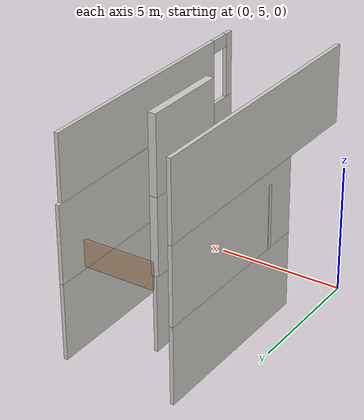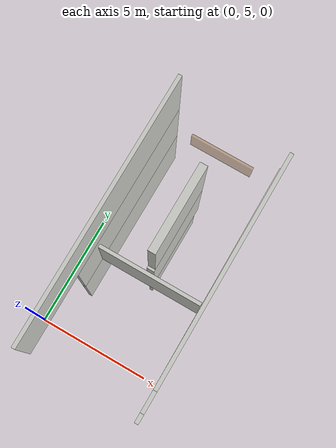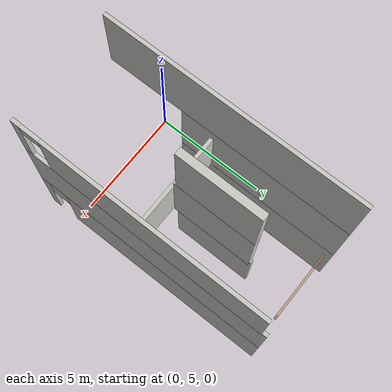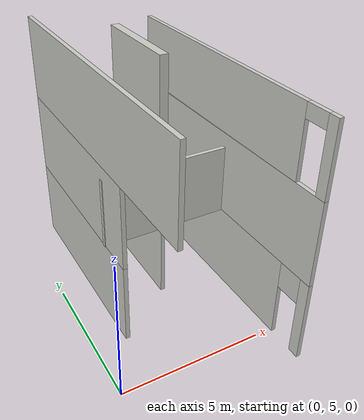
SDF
<sdf version="1.6">
 <model name="add_competition_building">
  <link name="Wall_253">
   <pose>1.156 10.5635 0 0 0 -1.5708</pose>
   <visual name="Wall_253_Visual">
    <pose>0 0 1.5 0 -0 0</pose>
    <geometry><box><size>7.25 0.15 3</size></box></geometry>
    <material>
     <script><uri>file://media/materials/scripts/gazebo.material</uri><name>Gazebo/CeilingTiled</name></script>
     <ambient>1 1 1 1</ambient>
     <shader type="pixel"/>
    </material>
    <meta><layer>0</layer></meta>
   </visual>
   <collision name="Wall_253_Collision">
    <pose>0 0 1.5 0 -0 0</pose>
    <geometry><box><size>7.25 0.15 3</size></box></geometry>
    <surface>
     <friction>
      <ode><mu>1</mu><mu2>1</mu2><fdir1>0 0 0</fdir1><slip1>0</slip1><slip2>0</slip2></ode>
      <torsional>
       <coefficient>1</coefficient>
       <patch_radius>0</patch_radius>
       <surface_radius>0</surface_radius>
       <use_patch_radius>1</use_patch_radius>
       <ode><slip>0</slip></ode>
      </torsional>
     </friction>
     <bounce><restitution_coefficient>0</restitution_coefficient><threshold>1e+06</threshold></bounce>
     <contact>
      <collide_without_contact>0</collide_without_contact>
      <collide_without_contact_bitmask>1</collide_without_contact_bitmask>
      <collide_bitmask>1</collide_bitmask>
      <ode>
       <soft_cfm>0</soft_cfm>
       <soft_erp>0.2</soft_erp>
       <kp>1e+13</kp>
       <kd>1</kd>
       <max_vel>0.01</max_vel>
       <min_depth>0</min_depth>
      </ode>
      <bullet>
       <split_impulse>1</split_impulse>
       <split_impulse_penetration_threshold>-0.01</split_impulse_penetration_threshold>
       <soft_cfm>0</soft_cfm>
       <soft_erp>0.2</soft_erp>
       <kp>1e+13</kp>
       <kd>1</kd>
      </bullet>
     </contact>
    </surface>
   </collision>
  </link>
  <link name="Wall_261">
   <pose>5.645 8.8435 0 0 0 -1.56691</pose>
   <visual name="Wall_261_Visual_0">
    <pose>-0.644302 0 1.5 0 -0 0</pose>
    <geometry><box><size>9.16098 0.15 3</size></box></geometry>
    <material>
     <script><uri>file://media/materials/scripts/gazebo.material</uri><name>Gazebo/CeilingTiled</name></script>
     <ambient>1 1 1 1</ambient>
     <shader type="pixel"/>
    </material>
    <meta><layer>0</layer></meta>
   </visual>
   <visual name="Wall_261_Visual_2">
    <pose>4.38619 0 2.5 0 -0 0</pose>
    <geometry><box><size>0.9 0.15 1</size></box></geometry>
    <material>
     <script><uri>file://media/materials/scripts/gazebo.material</uri><name>Gazebo/CeilingTiled</name></script>
     <ambient>1 1 1 1</ambient>
     <shader type="pixel"/>
    </material>
    <meta><layer>0</layer></meta>
   </visual>
   <visual name="Wall_261_Visual_1">
    <pose>5.03049 0 1.5 0 -0 0</pose>
    <geometry><box><size>0.388604 0.15 3</size></box></geometry>
    <material>
     <script><uri>file://media/materials/scripts/gazebo.material</uri><name>Gazebo/CeilingTiled</name></script>
     <ambient>1 1 1 1</ambient>
     <shader type="pixel"/>
    </material>
    <meta><layer>0</layer></meta>
   </visual>
   <collision name="Wall_261_Collision_0">
    <pose>-0.644302 0 1.5 0 -0 0</pose>
    <geometry><box><size>9.16098 0.15 3</size></box></geometry>
    <surface>
     <friction>
      <ode><mu>1</mu><mu2>1</mu2><fdir1>0 0 0</fdir1><slip1>0</slip1><slip2>0</slip2></ode>
      <torsional>
       <coefficient>1</coefficient>
       <patch_radius>0</patch_radius>
       <surface_radius>0</surface_radius>
       <use_patch_radius>1</use_patch_radius>
       <ode><slip>0</slip></ode>
      </torsional>
     </friction>
     <bounce><restitution_coefficient>0</restitution_coefficient><threshold>1e+06</threshold></bounce>
     <contact>
      <collide_without_contact>0</collide_without_contact>
      <collide_without_contact_bitmask>1</collide_without_contact_bitmask>
      <collide_bitmask>1</collide_bitmask>
      <ode>
       <soft_cfm>0</soft_cfm>
       <soft_erp>0.2</soft_erp>
       <kp>1e+13</kp>
       <kd>1</kd>
       <max_vel>0.01</max_vel>
       <min_depth>0</min_depth>
      </ode>
      <bullet>
       <split_impulse>1</split_impulse>
       <split_impulse_penetration_threshold>-0.01</split_impulse_penetration_threshold>
       <soft_cfm>0</soft_cfm>
       <soft_erp>0.2</soft_erp>
       <kp>1e+13</kp>
       <kd>1</kd>
      </bullet>
     </contact>
    </surface>
   </collision>
   <collision name="Wall_261_Collision_2">
    <pose>4.38619 0 2.5 0 -0 0</pose>
    <geometry><box><size>0.9 0.15 1</size></box></geometry>
    <surface>
     <friction>
      <ode><mu>1</mu><mu2>1</mu2><fdir1>0 0 0</fdir1><slip1>0</slip1><slip2>0</slip2></ode>
      <torsional>
       <coefficient>1</coefficient>
       <patch_radius>0</patch_radius>
       <surface_radius>0</surface_radius>
       <use_patch_radius>1</use_patch_radius>
       <ode><slip>0</slip></ode>
      </torsional>
     </friction>
     <bounce><restitution_coefficient>0</restitution_coefficient><threshold>1e+06</threshold></bounce>
     <contact>
      <collide_without_contact>0</collide_without_contact>
      <collide_without_contact_bitmask>1</collide_without_contact_bitmask>
      <collide_bitmask>1</collide_bitmask>
      <ode>
       <soft_cfm>0</soft_cfm>
       <soft_erp>0.2</soft_erp>
       <kp>1e+13</kp>
       <kd>1</kd>
       <max_vel>0.01</max_vel>
       <min_depth>0</min_depth>
      </ode>
      <bullet>
       <split_impulse>1</split_impulse>
       <split_impulse_penetration_threshold>-0.01</split_impulse_penetration_threshold>
       <soft_cfm>0</soft_cfm>
       <soft_erp>0.2</soft_erp>
       <kp>1e+13</kp>
       <kd>1</kd>
      </bullet>
     </contact>
    </surface>
   </collision>
   <collision name="Wall_261_Collision_1">
    <pose>5.03049 0 1.5 0 -0 0</pose>
    <geometry><box><size>0.388604 0.15 3</size></box></geometry>
    <surface>
     <friction>
      <ode><mu>1</mu><mu2>1</mu2><fdir1>0 0 0</fdir1><slip1>0</slip1><slip2>0</slip2></ode>
      <torsional>
       <coefficient>1</coefficient>
       <patch_radius>0</patch_radius>
       <surface_radius>0</surface_radius>
       <use_patch_radius>1</use_patch_radius>
       <ode><slip>0</slip></ode>
      </torsional>
     </friction>
     <bounce><restitution_coefficient>0</restitution_coefficient><threshold>1e+06</threshold></bounce>
     <contact>
      <collide_without_contact>0</collide_without_contact>
      <collide_without_contact_bitmask>1</collide_without_contact_bitmask>
      <collide_bitmask>1</collide_bitmask>
      <ode>
       <soft_cfm>0</soft_cfm>
       <soft_erp>0.2</soft_erp>
       <kp>1e+13</kp>
       <kd>1</kd>
       <max_vel>0.01</max_vel>
       <min_depth>0</min_depth>
      </ode>
      <bullet>
       <split_impulse>1</split_impulse>
       <split_impulse_penetration_threshold>-0.01</split_impulse_penetration_threshold>
       <soft_cfm>0</soft_cfm>
       <soft_erp>0.2</soft_erp>
       <kp>1e+13</kp>
       <kd>1</kd>
      </bullet>
     </contact>
    </surface>
   </collision>
  </link>
  <link name="Wall_275">
   <pose>3.324 10.2305 0 0 0 -1.5708</pose>
   <visual name="Wall_275_Visual">
    <pose>0 0 1.5 0 -0 0</pose>
    <geometry><box><size>3.5 0.15 3</size></box></geometry>
    <material>
     <script><uri>file://media/materials/scripts/gazebo.material</uri><name>Gazebo/CeilingTiled</name></script>
     <ambient>1 1 1 1</ambient>
     <shader type="pixel"/>
    </material>
    <meta><layer>0</layer></meta>
   </visual>
   <collision name="Wall_275_Collision">
    <pose>0 0 1.5 0 -0 0</pose>
    <geometry><box><size>3.5 0.15 3</size></box></geometry>
    <surface>
     <friction>
      <ode><mu>1</mu><mu2>1</mu2><fdir1>0 0 0</fdir1><slip1>0</slip1><slip2>0</slip2></ode>
      <torsional>
       <coefficient>1</coefficient>
       <patch_radius>0</patch_radius>
       <surface_radius>0</surface_radius>
       <use_patch_radius>1</use_patch_radius>
       <ode><slip>0</slip></ode>
      </torsional>
     </friction>
     <bounce><restitution_coefficient>0</restitution_coefficient><threshold>1e+06</threshold></bounce>
     <contact>
      <collide_without_contact>0</collide_without_contact>
      <collide_without_contact_bitmask>1</collide_without_contact_bitmask>
      <collide_bitmask>1</collide_bitmask>
      <ode>
       <soft_cfm>0</soft_cfm>
       <soft_erp>0.2</soft_erp>
       <kp>1e+13</kp>
       <kd>1</kd>
       <max_vel>0.01</max_vel>
       <min_depth>0</min_depth>
      </ode>
      <bullet>
       <split_impulse>1</split_impulse>
       <split_impulse_penetration_threshold>-0.01</split_impulse_penetration_threshold>
       <soft_cfm>0</soft_cfm>
       <soft_erp>0.2</soft_erp>
       <kp>1e+13</kp>
       <kd>1</kd>
      </bullet>
     </contact>
    </surface>
   </collision>
  </link>
  <link name="Wall_289">
   <pose>1.156 10.5635 3 0 0 -1.5708</pose>
   <visual name="Wall_289_Visual">
    <pose>0 0 1.5 0 -0 0</pose>
    <geometry><box><size>7.25 0.15 3</size></box></geometry>
    <material>
     <script><uri>file://media/materials/scripts/gazebo.material</uri><name>Gazebo/CeilingTiled</name></script>
     <ambient>1 1 1 1</ambient>
     <shader type="pixel"/>
    </material>
    <meta><layer>1</layer></meta>
   </visual>
   <collision name="Wall_289_Collision">
    <pose>0 0 1.5 0 -0 0</pose>
    <geometry><box><size>7.25 0.15 3</size></box></geometry>
    <surface>
     <friction>
      <ode><mu>1</mu><mu2>1</mu2><fdir1>0 0 0</fdir1><slip1>0</slip1><slip2>0</slip2></ode>
      <torsional>
       <coefficient>1</coefficient>
       <patch_radius>0</patch_radius>
       <surface_radius>0</surface_radius>
       <use_patch_radius>1</use_patch_radius>
       <ode><slip>0</slip></ode>
      </torsional>
     </friction>
     <bounce><restitution_coefficient>0</restitution_coefficient><threshold>1e+06</threshold></bounce>
     <contact>
      <collide_without_contact>0</collide_without_contact>
      <collide_without_contact_bitmask>1</collide_without_contact_bitmask>
      <collide_bitmask>1</collide_bitmask>
      <ode>
       <soft_cfm>0</soft_cfm>
       <soft_erp>0.2</soft_erp>
       <kp>1e+13</kp>
       <kd>1</kd>
       <max_vel>0.01</max_vel>
       <min_depth>0</min_depth>
      </ode>
      <bullet>
       <split_impulse>1</split_impulse>
       <split_impulse_penetration_threshold>-0.01</split_impulse_penetration_threshold>
       <soft_cfm>0</soft_cfm>
       <soft_erp>0.2</soft_erp>
       <kp>1e+13</kp>
       <kd>1</kd>
      </bullet>
     </contact>
    </surface>
   </collision>
  </link>
  <link name="Wall_293">
   <pose>5.645 8.8435 3 0 0 -1.56691</pose>
   <visual name="Wall_293_Visual">
    <pose>0 0 1.5 0 -0 0</pose>
    <geometry><box><size>10.4501 0.15 3</size></box></geometry>
    <material>
     <script><uri>file://media/materials/scripts/gazebo.material</uri><name>Gazebo/CeilingTiled</name></script>
     <ambient>1 1 1 1</ambient>
     <shader type="pixel"/>
    </material>
    <meta><layer>1</layer></meta>
   </visual>
   <collision name="Wall_293_Collision">
    <pose>0 0 1.5 0 -0 0</pose>
    <geometry><box><size>10.4501 0.15 3</size></box></geometry>
    <surface>
     <friction>
      <ode><mu>1</mu><mu2>1</mu2><fdir1>0 0 0</fdir1><slip1>0</slip1><slip2>0</slip2></ode>
      <torsional>
       <coefficient>1</coefficient>
       <patch_radius>0</patch_radius>
       <surface_radius>0</surface_radius>
       <use_patch_radius>1</use_patch_radius>
       <ode><slip>0</slip></ode>
      </torsional>
     </friction>
     <bounce><restitution_coefficient>0</restitution_coefficient><threshold>1e+06</threshold></bounce>
     <contact>
      <collide_without_contact>0</collide_without_contact>
      <collide_without_contact_bitmask>1</collide_without_contact_bitmask>
      <collide_bitmask>1</collide_bitmask>
      <ode>
       <soft_cfm>0</soft_cfm>
       <soft_erp>0.2</soft_erp>
       <kp>1e+13</kp>
       <kd>1</kd>
       <max_vel>0.01</max_vel>
       <min_depth>0</min_depth>
      </ode>
      <bullet>
       <split_impulse>1</split_impulse>
       <split_impulse_penetration_threshold>-0.01</split_impulse_penetration_threshold>
       <soft_cfm>0</soft_cfm>
       <soft_erp>0.2</soft_erp>
       <kp>1e+13</kp>
       <kd>1</kd>
      </bullet>
     </contact>
    </surface>
   </collision>
  </link>
  <link name="Wall_302">
   <pose>3.36 10.1625 3 0 0 -1.5708</pose>
   <visual name="Wall_302_Visual">
    <pose>0 0 1.5 0 -0 0</pose>
    <geometry><box><size>3.5 0.3 3</size></box></geometry>
    <material>
     <script><uri>file://media/materials/scripts/gazebo.material</uri><name>Gazebo/CeilingTiled</name></script>
     <ambient>1 1 1 1</ambient>
     <shader type="pixel"/>
    </material>
    <meta><layer>1</layer></meta>
   </visual>
   <collision name="Wall_302_Collision">
    <pose>0 0 1.5 0 -0 0</pose>
    <geometry><box><size>3.5 0.3 3</size></box></geometry>
    <surface>
     <friction>
      <ode><mu>1</mu><mu2>1</mu2><fdir1>0 0 0</fdir1><slip1>0</slip1><slip2>0</slip2></ode>
      <torsional>
       <coefficient>1</coefficient>
       <patch_radius>0</patch_radius>
       <surface_radius>0</surface_radius>
       <use_patch_radius>1</use_patch_radius>
       <ode><slip>0</slip></ode>
      </torsional>
     </friction>
     <bounce><restitution_coefficient>0</restitution_coefficient><threshold>1e+06</threshold></bounce>
     <contact>
      <collide_without_contact>0</collide_without_contact>
      <collide_without_contact_bitmask>1</collide_without_contact_bitmask>
      <collide_bitmask>1</collide_bitmask>
      <ode>
       <soft_cfm>0</soft_cfm>
       <soft_erp>0.2</soft_erp>
       <kp>1e+13</kp>
       <kd>1</kd>
       <max_vel>0.01</max_vel>
       <min_depth>0</min_depth>
      </ode>
      <bullet>
       <split_impulse>1</split_impulse>
       <split_impulse_penetration_threshold>-0.01</split_impulse_penetration_threshold>
       <soft_cfm>0</soft_cfm>
       <soft_erp>0.2</soft_erp>
       <kp>1e+13</kp>
       <kd>1</kd>
      </bullet>
     </contact>
    </surface>
   </collision>
  </link>
  <link name="Wall_344">
   <pose>1.156 8.9385 6 0 0 -1.5708</pose>
   <visual name="Wall_344_Visual">
    <pose>0 0 1.5 0 -0 0</pose>
    <geometry><box><size>10.5 0.15 3</size></box></geometry>
    <material>
     <script><uri>file://media/materials/scripts/gazebo.material</uri><name>Gazebo/CeilingTiled</name></script>
     <ambient>1 1 1 1</ambient>
     <shader type="pixel"/>
    </material>
    <meta><layer>2</layer></meta>
   </visual>
   <collision name="Wall_344_Collision">
    <pose>0 0 1.5 0 -0 0</pose>
    <geometry><box><size>10.5 0.15 3</size></box></geometry>
    <surface>
     <friction>
      <ode><mu>1</mu><mu2>1</mu2><fdir1>0 0 0</fdir1><slip1>0</slip1><slip2>0</slip2></ode>
      <torsional>
       <coefficient>1</coefficient>
       <patch_radius>0</patch_radius>
       <surface_radius>0</surface_radius>
       <use_patch_radius>1</use_patch_radius>
       <ode><slip>0</slip></ode>
      </torsional>
     </friction>
     <bounce><restitution_coefficient>0</restitution_coefficient><threshold>1e+06</threshold></bounce>
     <contact>
      <collide_without_contact>0</collide_without_contact>
      <collide_without_contact_bitmask>1</collide_without_contact_bitmask>
      <collide_bitmask>1</collide_bitmask>
      <ode>
       <soft_cfm>0</soft_cfm>
       <soft_erp>0.2</soft_erp>
       <kp>1e+13</kp>
       <kd>1</kd>
       <max_vel>0.01</max_vel>
       <min_depth>0</min_depth>
      </ode>
      <bullet>
       <split_impulse>1</split_impulse>
       <split_impulse_penetration_threshold>-0.01</split_impulse_penetration_threshold>
       <soft_cfm>0</soft_cfm>
       <soft_erp>0.2</soft_erp>
       <kp>1e+13</kp>
       <kd>1</kd>
      </bullet>
     </contact>
    </surface>
   </collision>
  </link>
  <link name="Wall_356">
   <pose>3.36 10.2125 6 0 0 -1.5708</pose>
   <visual name="Wall_356_Visual">
    <pose>0 0 1.5 0 -0 0</pose>
    <geometry><box><size>3.4 0.3 3</size></box></geometry>
    <material>
     <script><uri>file://media/materials/scripts/gazebo.material</uri><name>Gazebo/CeilingTiled</name></script>
     <ambient>1 1 1 1</ambient>
     <shader type="pixel"/>
    </material>
    <meta><layer>2</layer></meta>
   </visual>
   <collision name="Wall_356_Collision">
    <pose>0 0 1.5 0 -0 0</pose>
    <geometry><box><size>3.4 0.3 3</size></box></geometry>
    <surface>
     <friction>
      <ode><mu>1</mu><mu2>1</mu2><fdir1>0 0 0</fdir1><slip1>0</slip1><slip2>0</slip2></ode>
      <torsional>
       <coefficient>1</coefficient>
       <patch_radius>0</patch_radius>
       <surface_radius>0</surface_radius>
       <use_patch_radius>1</use_patch_radius>
       <ode><slip>0</slip></ode>
      </torsional>
     </friction>
     <bounce><restitution_coefficient>0</restitution_coefficient><threshold>1e+06</threshold></bounce>
     <contact>
      <collide_without_contact>0</collide_without_contact>
      <collide_without_contact_bitmask>1</collide_without_contact_bitmask>
      <collide_bitmask>1</collide_bitmask>
      <ode>
       <soft_cfm>0</soft_cfm>
       <soft_erp>0.2</soft_erp>
       <kp>1e+13</kp>
       <kd>1</kd>
       <max_vel>0.01</max_vel>
       <min_depth>0</min_depth>
      </ode>
      <bullet>
       <split_impulse>1</split_impulse>
       <split_impulse_penetration_threshold>-0.01</split_impulse_penetration_threshold>
       <soft_cfm>0</soft_cfm>
       <soft_erp>0.2</soft_erp>
       <kp>1e+13</kp>
       <kd>1</kd>
      </bullet>
     </contact>
    </surface>
   </collision>
  </link>
  <link name="Wall_357">
   <pose>3.30192 8.31387 3 0 -0 0</pose>
   <visual name="Wall_357_Visual">
    <pose>0 0 1.25 0 -0 0</pose>
    <geometry><box><size>4.5 0.15 2.5</size></box></geometry>
    <material>
     <script><uri>file://media/materials/scripts/gazebo.material</uri><name>Gazebo/CeilingTiled</name></script>
     <ambient>1 1 1 1</ambient>
     <shader type="pixel"/>
    </material>
    <meta><layer>1</layer></meta>
   </visual>
   <collision name="Wall_357_Collision">
    <pose>0 0 1.25 0 -0 0</pose>
    <geometry><box><size>4.5 0.15 2.5</size></box></geometry>
    <surface>
     <friction>
      <ode><mu>1</mu><mu2>1</mu2><fdir1>0 0 0</fdir1><slip1>0</slip1><slip2>0</slip2></ode>
      <torsional>
       <coefficient>1</coefficient>
       <patch_radius>0</patch_radius>
       <surface_radius>0</surface_radius>
       <use_patch_radius>1</use_patch_radius>
       <ode><slip>0</slip></ode>
      </torsional>
     </friction>
     <bounce><restitution_coefficient>0</restitution_coefficient><threshold>1e+06</threshold></bounce>
     <contact>
      <collide_without_contact>0</collide_without_contact>
      <collide_without_contact_bitmask>1</collide_without_contact_bitmask>
      <collide_bitmask>1</collide_bitmask>
      <ode>
       <soft_cfm>0</soft_cfm>
       <soft_erp>0.2</soft_erp>
       <kp>1e+13</kp>
       <kd>1</kd>
       <max_vel>0.01</max_vel>
       <min_depth>0</min_depth>
      </ode>
      <bullet>
       <split_impulse>1</split_impulse>
       <split_impulse_penetration_threshold>-0.01</split_impulse_penetration_threshold>
       <soft_cfm>0</soft_cfm>
       <soft_erp>0.2</soft_erp>
       <kp>1e+13</kp>
       <kd>1</kd>
      </bullet>
     </contact>
    </surface>
   </collision>
  </link>
  <link name="Wall_361">
   <pose>5.665 8.7435 6 0 -0 1.5708</pose>
   <visual name="Wall_361_Visual_2">
    <pose>-4.34898 0 2.25 0 -0 0</pose>
    <geometry><box><size>0.82 0.15 0.5</size></box></geometry>
    <material>
     <script><uri>file://media/materials/scripts/gazebo.material</uri><name>Gazebo/CeilingTiled</name></script>
     <ambient>1 1 1 1</ambient>
     <shader type="pixel"/>
    </material>
    <meta><layer>2</layer></meta>
   </visual>
   <visual name="Wall_361_Visual_1">
    <pose>0.593008 0 1.25 0 -0 0</pose>
    <geometry><box><size>9.06398 0.15 2.5</size></box></geometry>
    <material>
     <script><uri>file://media/materials/scripts/gazebo.material</uri><name>Gazebo/CeilingTiled</name></script>
     <ambient>1 1 1 1</ambient>
     <shader type="pixel"/>
    </material>
    <meta><layer>2</layer></meta>
   </visual>
   <visual name="Wall_361_Visual_0">
    <pose>-4.94199 0 1.25 0 -0 0</pose>
    <geometry><box><size>0.366017 0.15 2.5</size></box></geometry>
    <material>
     <script><uri>file://media/materials/scripts/gazebo.material</uri><name>Gazebo/CeilingTiled</name></script>
     <ambient>1 1 1 1</ambient>
     <shader type="pixel"/>
    </material>
    <meta><layer>2</layer></meta>
   </visual>
   <collision name="Wall_361_Collision_1">
    <pose>0.593008 0 1.25 0 -0 0</pose>
    <geometry><box><size>9.06398 0.15 2.5</size></box></geometry>
    <surface>
     <friction>
      <ode><mu>1</mu><mu2>1</mu2><fdir1>0 0 0</fdir1><slip1>0</slip1><slip2>0</slip2></ode>
      <torsional>
       <coefficient>1</coefficient>
       <patch_radius>0</patch_radius>
       <surface_radius>0</surface_radius>
       <use_patch_radius>1</use_patch_radius>
       <ode><slip>0</slip></ode>
      </torsional>
     </friction>
     <bounce><restitution_coefficient>0</restitution_coefficient><threshold>1e+06</threshold></bounce>
     <contact>
      <collide_without_contact>0</collide_without_contact>
      <collide_without_contact_bitmask>1</collide_without_contact_bitmask>
      <collide_bitmask>1</collide_bitmask>
      <ode>
       <soft_cfm>0</soft_cfm>
       <soft_erp>0.2</soft_erp>
       <kp>1e+13</kp>
       <kd>1</kd>
       <max_vel>0.01</max_vel>
       <min_depth>0</min_depth>
      </ode>
      <bullet>
       <split_impulse>1</split_impulse>
       <split_impulse_penetration_threshold>-0.01</split_impulse_penetration_threshold>
       <soft_cfm>0</soft_cfm>
       <soft_erp>0.2</soft_erp>
       <kp>1e+13</kp>
       <kd>1</kd>
      </bullet>
     </contact>
    </surface>
   </collision>
   <collision name="Wall_361_Collision_0">
    <pose>-4.94199 0 1.25 0 -0 0</pose>
    <geometry><box><size>0.366017 0.15 2.5</size></box></geometry>
    <surface>
     <friction>
      <ode><mu>1</mu><mu2>1</mu2><fdir1>0 0 0</fdir1><slip1>0</slip1><slip2>0</slip2></ode>
      <torsional>
       <coefficient>1</coefficient>
       <patch_radius>0</patch_radius>
       <surface_radius>0</surface_radius>
       <use_patch_radius>1</use_patch_radius>
       <ode><slip>0</slip></ode>
      </torsional>
     </friction>
     <bounce><restitution_coefficient>0</restitution_coefficient><threshold>1e+06</threshold></bounce>
     <contact>
      <collide_without_contact>0</collide_without_contact>
      <collide_without_contact_bitmask>1</collide_without_contact_bitmask>
      <collide_bitmask>1</collide_bitmask>
      <ode>
       <soft_cfm>0</soft_cfm>
       <soft_erp>0.2</soft_erp>
       <kp>1e+13</kp>
       <kd>1</kd>
       <max_vel>0.01</max_vel>
       <min_depth>0</min_depth>
      </ode>
      <bullet>
       <split_impulse>1</split_impulse>
       <split_impulse_penetration_threshold>-0.01</split_impulse_penetration_threshold>
       <soft_cfm>0</soft_cfm>
       <soft_erp>0.2</soft_erp>
       <kp>1e+13</kp>
       <kd>1</kd>
      </bullet>
     </contact>
    </surface>
   </collision>
   <collision name="Wall_361_Collision_2">
    <pose>-4.34898 0 2.25 0 -0 0</pose>
    <geometry><box><size>0.82 0.15 0.5</size></box></geometry>
    <surface>
     <friction>
      <ode><mu>1</mu><mu2>1</mu2><fdir1>0 0 0</fdir1><slip1>0</slip1><slip2>0</slip2></ode>
      <torsional>
       <coefficient>1</coefficient>
       <patch_radius>0</patch_radius>
       <surface_radius>0</surface_radius>
       <use_patch_radius>1</use_patch_radius>
       <ode><slip>0</slip></ode>
      </torsional>
     </friction>
     <bounce><restitution_coefficient>0</restitution_coefficient><threshold>1e+06</threshold></bounce>
     <contact>
      <collide_without_contact>0</collide_without_contact>
      <collide_without_contact_bitmask>1</collide_without_contact_bitmask>
      <collide_bitmask>1</collide_bitmask>
      <ode>
       <soft_cfm>0</soft_cfm>
       <soft_erp>0.2</soft_erp>
       <kp>1e+13</kp>
       <kd>1</kd>
       <max_vel>0.01</max_vel>
       <min_depth>0</min_depth>
      </ode>
      <bullet>
       <split_impulse>1</split_impulse>
       <split_impulse_penetration_threshold>-0.01</split_impulse_penetration_threshold>
       <soft_cfm>0</soft_cfm>
       <soft_erp>0.2</soft_erp>
       <kp>1e+13</kp>
       <kd>1</kd>
      </bullet>
     </contact>
    </surface>
   </collision>
  </link>
  <link name="link_1">
   <inertial>
    <mass>0.247014</mass>
    <inertia>
     <ixx>0.0207589</ixx>
     <ixy>0</ixy>
     <ixz>0</ixz>
     <iyy>0.168844</iyy>
     <iyz>0</iyz>
     <izz>0.148434</izz>
    </inertia>
   </inertial>
   <pose>3.34192 13.9047 4.45994 0 -0 0</pose>
   <visual name="visual">
    <geometry><box><size>2.68375 0.092046 1</size></box></geometry>
    <material>
     <lighting>1</lighting>
     <script><uri>file://media/materials/scripts/gazebo.material</uri><name>Gazebo/WoodPallet</name></script>
     <shader type="pixel"><normal_map>__default__</normal_map></shader>
     <ambient>0.3 0.3 0.3 1</ambient>
     <diffuse>0.7 0.7 0.7 1</diffuse>
     <specular>0.01 0.01 0.01 1</specular>
     <emissive>0 0 0 1</emissive>
    </material>
    <transparency>0.5</transparency>
   </visual>
   <collision name="collision">
    <geometry><box><size>2.68375 0.092046 1</size></box></geometry>
    <surface>
     <friction>
      <ode><mu>1</mu><mu2>1</mu2><fdir1>0 0 0</fdir1><slip1>0</slip1><slip2>0</slip2></ode>
      <torsional>
       <coefficient>1</coefficient>
       <patch_radius>0</patch_radius>
       <surface_radius>0</surface_radius>
       <use_patch_radius>1</use_patch_radius>
       <ode><slip>0</slip></ode>
      </torsional>
     </friction>
     <bounce><restitution_coefficient>0</restitution_coefficient><threshold>1e+06</threshold></bounce>
     <contact>
      <collide_without_contact>0</collide_without_contact>
      <collide_without_contact_bitmask>1</collide_without_contact_bitmask>
      <collide_bitmask>1</collide_bitmask>
      <ode>
       <soft_cfm>0</soft_cfm>
       <soft_erp>0.2</soft_erp>
       <kp>1e+13</kp>
       <kd>1</kd>
       <max_vel>0.01</max_vel>
       <min_depth>0</min_depth>
      </ode>
      <bullet>
       <split_impulse>1</split_impulse>
       <split_impulse_penetration_threshold>-0.01</split_impulse_penetration_threshold>
       <soft_cfm>0</soft_cfm>
       <soft_erp>0.2</soft_erp>
       <kp>1e+13</kp>
       <kd>1</kd>
      </bullet>
     </contact>
    </surface>
   </collision>
  </link>
  <static>1</static>
 </model>
</sdf>
